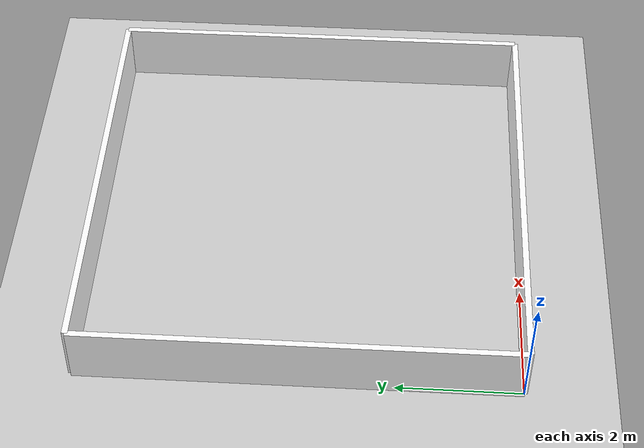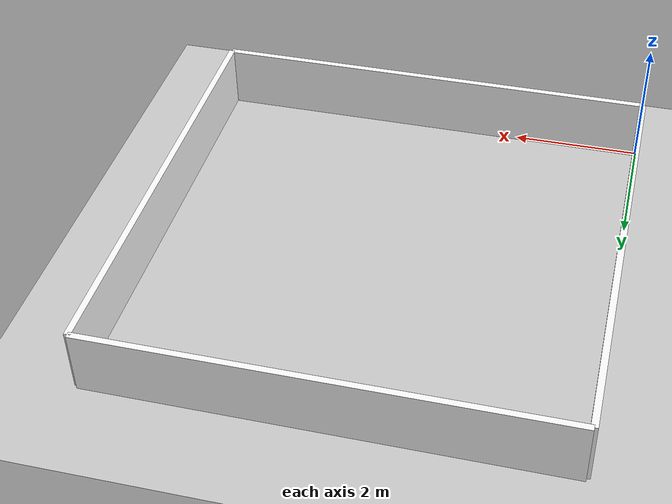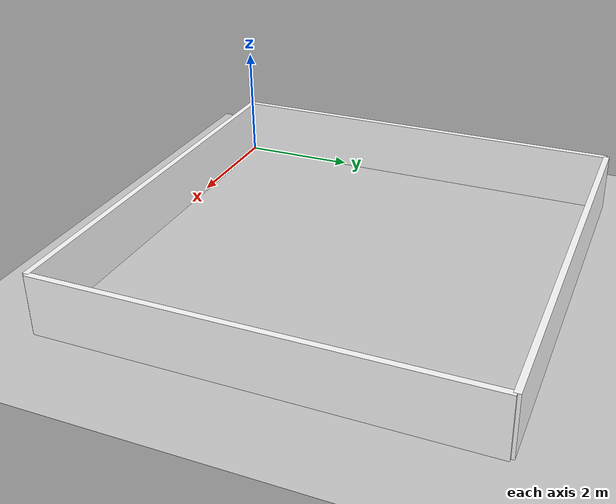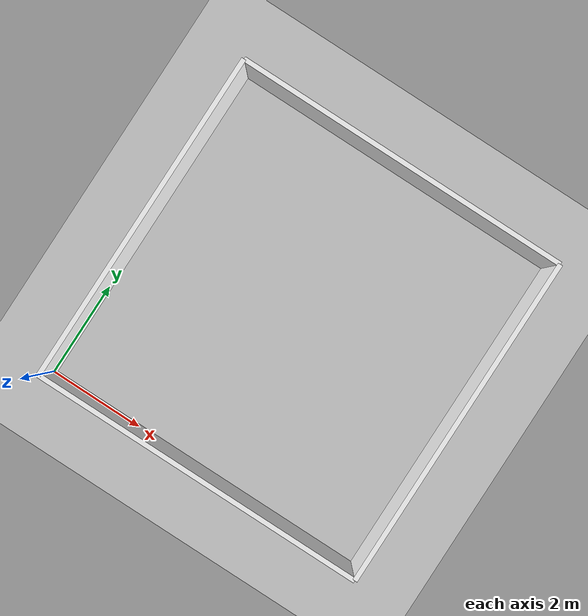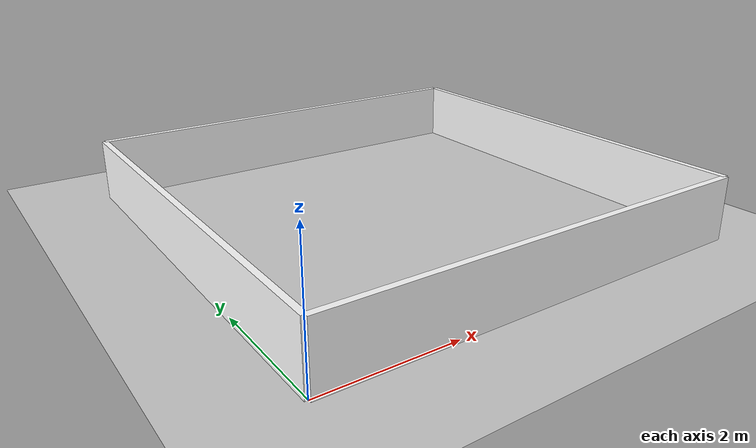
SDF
<?xml version="1.0" ?>
<sdf version="1.8">
  <world name="7x7">

    <plugin filename="gz-sim-physics-system" name="gz::sim::systems::Physics"></plugin>
    <plugin filename="gz-sim-scene-broadcaster-system" name="gz::sim::systems::SceneBroadcaster"></plugin>
    <plugin filename="gz-sim-user-commands-system" name="gz::sim::systems::UserCommands"></plugin>
    <plugin filename="gz-sim-sensors-system" name="gz::sim::systems::Sensors"></plugin>
    <plugin filename="gz-sim-imu-system" name="gz::sim::systems::Imu"></plugin>

    <light type="directional" name="sun">
      <cast_shadows>true</cast_shadows>
      <pose>0 0 10 0 0 0</pose>
      <diffuse>0.8 0.8 0.8 1</diffuse>
      <specular>0.2 0.2 0.2 1</specular>
      <direction>-0.5 0.1 -0.9</direction>
    </light>

    <model name="ground_plane">
      <static>true</static>
      <link name="link">
        <collision name="collision">
          <geometry><plane><normal>0 0 1</normal><size>50 50</size></plane></geometry>
        </collision>
        <visual name="visual">
          <geometry><plane><normal>0 0 1</normal><size>50 50</size></plane></geometry>
          <material><ambient>0.8 0.8 0.8 1</ambient><diffuse>0.8 0.8 0.8 1</diffuse></material>
        </visual>
      </link>
    </model>

    <!-- Paredes en sistema de coordenadas 0-7 m -->
    <!-- Pared oeste: X=0, cubre Y de 0 a 7 -->
    <model name="wall_left_ext">
      <static>true</static>
      <link name="link">
        <visual name="visual">
          <geometry><box><size>7 0.1 1</size></box></geometry>
          <material><ambient>1 1 1 1</ambient></material>
        </visual>
        <collision name="collision">
          <geometry><box><size>7 0.1 1</size></box></geometry>
        </collision>
      </link>
      <pose>0 3.5 0.5 0 0 1.5708</pose>
    </model>

    <!-- Pared este: X=7, cubre Y de 0 a 7 -->
    <model name="wall_right_ext">
      <static>true</static>
      <link name="link">
        <visual name="visual">
          <geometry><box><size>7 0.1 1</size></box></geometry>
          <material><ambient>1 1 1 1</ambient></material>
        </visual>
        <collision name="collision">
          <geometry><box><size>7 0.1 1</size></box></geometry>
        </collision>
      </link>
      <pose>7 3.5 0.5 0 0 1.5708</pose>
    </model>

    <!-- Pared norte: Y=7, cubre X de 0 a 7 -->
    <model name="wall_top_ext">
      <static>true</static>
      <link name="link">
        <visual name="visual">
          <geometry><box><size>7 0.1 1</size></box></geometry>
          <material><ambient>1 1 1 1</ambient></material>
        </visual>
        <collision name="collision">
          <geometry><box><size>7 0.1 1</size></box></geometry>
        </collision>
      </link>
      <pose>3.5 7 0.5 0 0 0</pose>
    </model>

    <!-- Pared sur: Y=0, cubre X de 0 a 7 -->
    <model name="wall_bottom_ext">
      <static>true</static>
      <link name="link">
        <visual name="visual">
          <geometry><box><size>7 0.1 1</size></box></geometry>
          <material><ambient>1 1 1 1</ambient></material>
        </visual>
        <collision name="collision">
          <geometry><box><size>7 0.1 1</size></box></geometry>
        </collision>
      </link>
      <pose>3.5 0 0.5 0 0 0</pose>
    </model>
  </world>
</sdf>
